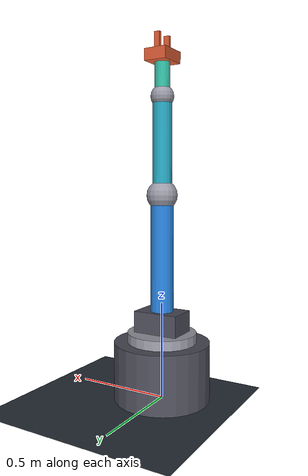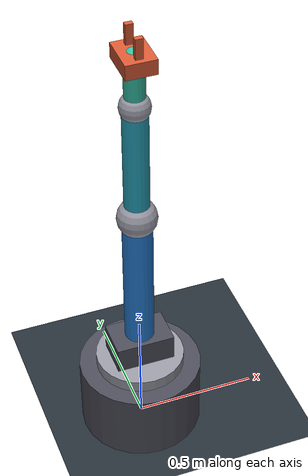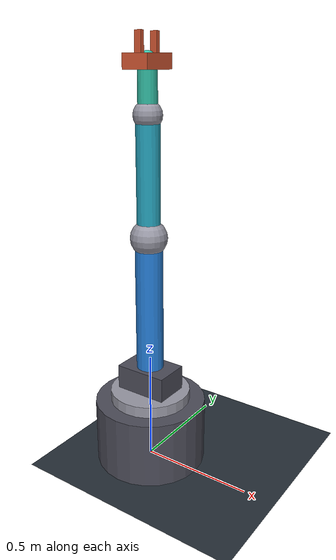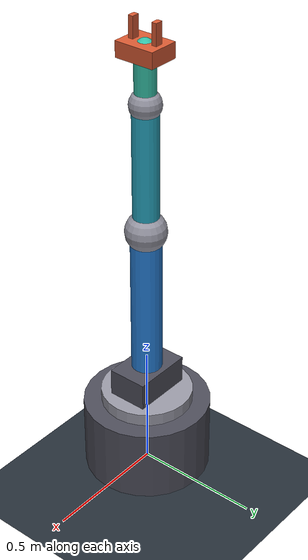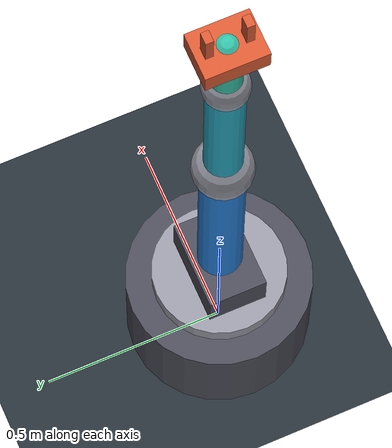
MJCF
<mujoco model="Robot Arm">
  <option timestep="0.002" integrator="RK4"/>

  <visual>
    <map force="0.1" zfar="50"/>
    <rgba haze="0.08 0.1 0.12 1"/>
    <global offwidth="1920" offheight="1080" elevation="-25" azimuth="135"/>
  </visual>

  <asset>
    <texture type="skybox" builtin="gradient" rgb1="0.35 0.45 0.55" rgb2="0.05 0.08 0.12" width="512" height="512"/>
    <texture name="floor_tex" type="2d" builtin="checker" width="256" height="256" rgb1="0.18 0.22 0.26" rgb2="0.12 0.15 0.18"/>
    <material name="floor_mat" texture="floor_tex" texrepeat="10 10" reflectance="0.4" shininess="0.6"/>
    <material name="base" rgba="0.3 0.3 0.35 1" shininess="0.8"/>
    <material name="link1" rgba="0.15 0.5 0.85 1" shininess="0.9"/>
    <material name="link2" rgba="0.15 0.65 0.75 1" shininess="0.9"/>
    <material name="link3" rgba="0.2 0.75 0.65 1" shininess="0.9"/>
    <material name="gripper" rgba="0.85 0.35 0.2 1" shininess="0.8"/>
    <material name="joint_mat" rgba="0.6 0.6 0.65 1" shininess="0.95"/>
  </asset>

  <default>
    <joint damping="0.5" armature="0.01"/>
    <geom friction="0.7" margin="0.001"/>
  </default>

  <worldbody>
    <geom name="floor" size="4 4 0.1" type="plane" material="floor_mat"/>

    <light name="key" pos="2 -3 4" dir="-0.5 0.75 -1" diffuse="0.9 0.85 0.8" specular="0.5 0.5 0.5"/>
    <light name="fill" pos="-2 -2 3" dir="0.5 0.5 -0.75" diffuse="0.4 0.45 0.55"/>
    <light name="top" pos="0 0 5" dir="0 0 -1" diffuse="0.3 0.3 0.35"/>

    <body name="base" pos="0 0 0.15">
      <geom name="base_geom" type="cylinder" size="0.25 0.15" material="base"/>

      <body name="shoulder_yaw" pos="0 0 0.15">
        <joint name="joint_base" type="hinge" axis="0 0 1" range="-180 180"/>
        <geom name="shoulder_disk" type="cylinder" size="0.18 0.05" material="joint_mat"/>

        <body name="shoulder" pos="0 0 0.08">
          <geom name="shoulder_mount" type="box" size="0.12 0.08 0.08" material="base"/>

          <body name="upper_arm" pos="0 0 0.08">
            <joint name="joint_shoulder" type="hinge" axis="0 1 0" range="-90 90"/>
            <geom name="upper_arm_geom" type="capsule" fromto="0 0 0 0 0 0.6" size="0.06" material="link1"/>
            <geom name="elbow_joint" type="sphere" pos="0 0 0.6" size="0.08" material="joint_mat"/>

            <body name="forearm" pos="0 0 0.6">
              <joint name="joint_elbow" type="hinge" axis="0 1 0" range="-135 0"/>
              <geom name="forearm_geom" type="capsule" fromto="0 0 0 0 0 0.5" size="0.05" material="link2"/>
              <geom name="wrist_joint" type="sphere" pos="0 0 0.5" size="0.06" material="joint_mat"/>

              <body name="wrist" pos="0 0 0.5">
                <joint name="joint_wrist" type="hinge" axis="0 1 0" range="-90 90"/>
                <geom name="wrist_geom" type="capsule" fromto="0 0 0 0 0 0.2" size="0.04" material="link3"/>

                <body name="gripper" pos="0 0 0.2">
                  <geom name="gripper_base" type="box" size="0.06 0.08 0.03" material="gripper"/>
                  <geom name="finger_left" type="box" pos="0 0.05 0.06" size="0.015 0.01 0.05" material="gripper"/>
                  <geom name="finger_right" type="box" pos="0 -0.05 0.06" size="0.015 0.01 0.05" material="gripper"/>
                </body>
              </body>
            </body>
          </body>
        </body>
      </body>
    </body>
  </worldbody>

  <actuator>
    <!-- Position actuators with built-in PD control - ctrl is target position in radians -->
    <position name="base_pos" joint="joint_base" kp="100" kv="10" ctrlrange="-3.14159 3.14159"/>
    <position name="shoulder_pos" joint="joint_shoulder" kp="200" kv="20" ctrlrange="-1.5708 1.5708"/>
    <position name="elbow_pos" joint="joint_elbow" kp="150" kv="15" ctrlrange="-2.3562 0"/>
    <position name="wrist_pos" joint="joint_wrist" kp="50" kv="5" ctrlrange="-1.5708 1.5708"/>
  </actuator>

  <keyframe>
    <key name="home" qpos="0 0 0 0"/>
    <key name="extended" qpos="0 45 -45 0"/>
    <key name="folded" qpos="0 60 -120 45"/>
    <key name="demo" qpos="30 30 -60 20"/>
  </keyframe>
</mujoco>
